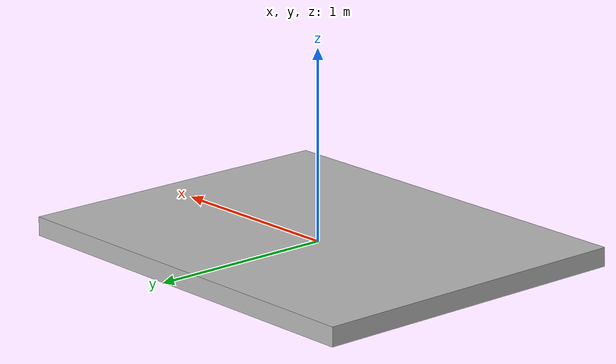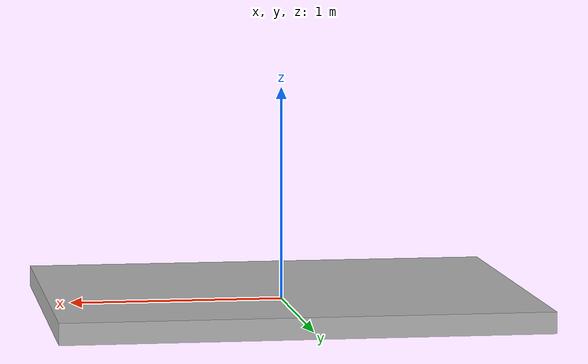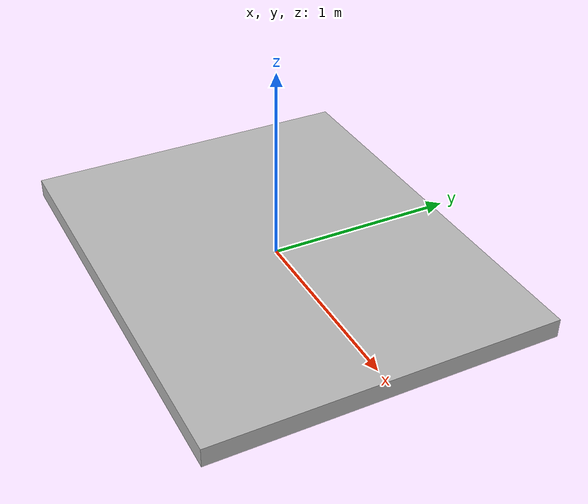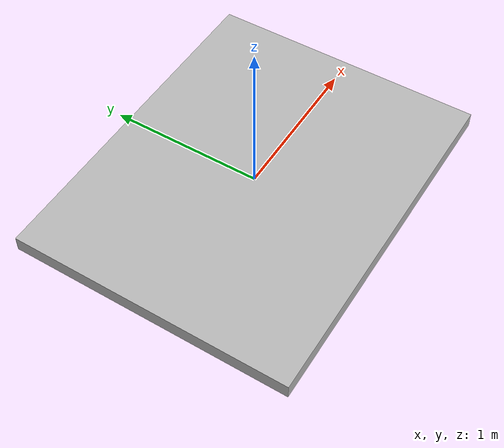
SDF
<?xml version='1.0'?>
<sdf version='1.6'>
  <model name="island_no_crossing_gimp">
      <static>true</static>
      <link name='link'>
        <collision name='collision'>
          <geometry>
         <box>
            <size>2.25 1.8 0.1</size>
          </box>
          </geometry>
          <surface>
            <friction>
              <ode>
                <mu>100</mu>
                <mu2>50</mu2>
              </ode>
            </friction>
          </surface>
        </collision>
        <visual name='visual'>
          <cast_shadows>0</cast_shadows>
          <geometry>
         <box>
            <size>2.25 1.8 0.1</size>
          </box>
          </geometry>
          <material>
            <script>
              <uri>model://island_no_crossing_gimp/materials/scripts</uri>
              <uri>model://island_no_crossing_gimp/materials/textures/</uri>
              <name>island_no_crossing_gimp/Image</name>
            </script>
          </material>
        </visual>
      </link>
  </model>
</sdf>
